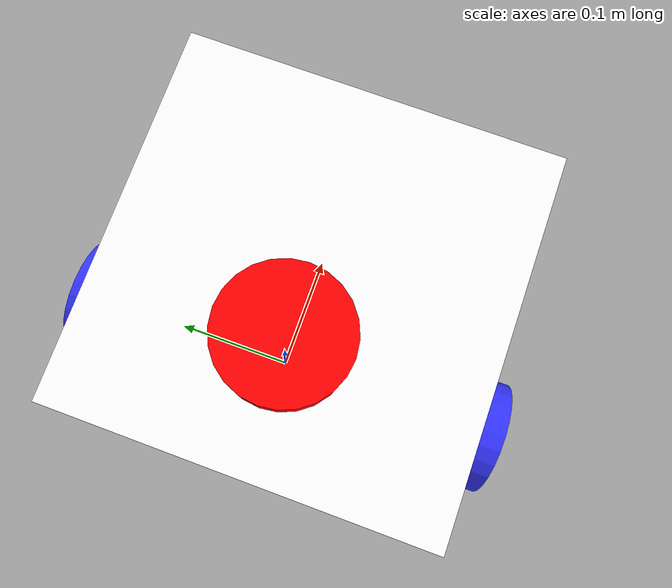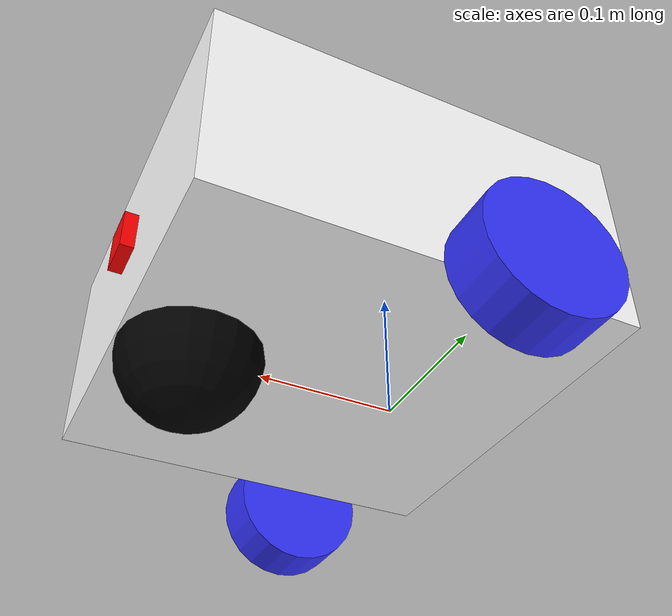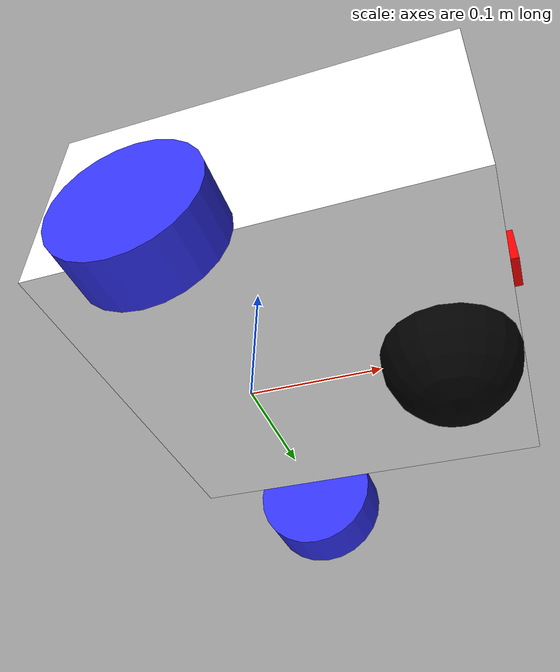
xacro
<?xml version="1.0"?>
<robot xmlns:xacro="http://www.ros.org/wiki/xacro"  name="robot">

    <xacro:arg name = "use_ros2_control" default = "true"/>
    <xacro:include filename="robot_core.xacro" />

    <xacro:if value="$(arg use_ros2_control)">
        <xacro:include filename="ros2_control.xacro" />
    </xacro:if>
    <xacro:unless value="$(arg use_ros2_control)">
        <xacro:include filename="gazebo_control.xacro" />
    </xacro:unless>
    <xacro:include filename="lidar.xacro" />
    <xacro:include filename="camera.xacro" />
</robot>

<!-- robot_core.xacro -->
<robot xmlns:xacro="http://www.ros.org/wiki/xacro">

  <xacro:include filename = "inertial_macros.xacro"/>

<material name="white">
<color rgba="1 1 1 1"/>
</material>

<material name="orange">
<color rgba="1 0.3 0.1 1"/>
</material>

<material name="blue">
<color rgba="0.2 0.2 1 1"/>
</material>

<material name="black">
<color rgba="0 0 0 1"/>
</material>

<material name="red">
<color rgba="1 0 0 1"/>
</material>

<link name="base_link">
</link>

<!--Base footprint-->
<joint name="base_footprint_joint" type="fixed">
    <parent link="base_link"/>
    <child link="base_footprint"/>
    <origin xyz="0 0 0" rpy = "0 0 0"/>

</joint>

<link name="base_footprint">
</link>

<!-- Chassis Link-->
<joint name="chassis_joint" type="fixed">
    <parent link="base_link"/>
    <child link="chassis"/>
    <origin xyz="-0.1 0 0"/>

</joint>

<link name="chassis">
    <visual>
        <origin xyz="0.15 0 0.08"/>
        <geometry>
            <box size="0.3 0.3 0.15"/>
        </geometry>
        <material name="white"/>
    </visual>
    <collision>
        <origin xyz="0.15 0 0.08"/>
        <geometry>
            <box size="0.3 0.3 0.15"/>
        </geometry>
    </collision>
<xacro:inertial_box mass = "5" x ="0" y = "0" z = "0.02">
    <origin xyz = "0.15 0 0.08" rpy = "0 0 0"/>
</xacro:inertial_box>
</link>
<gazebo refernce ="chassis">
    <material>Gazebo/white</material >
</gazebo>
<!-- Right Wheel Link-->

<joint name = "right_wheel_joint" type="continuous">
        <parent link="base_link"/>
        <child link="right_wheel"/>
        <origin xyz="0 -0.175 0" rpy="${pi/2} 0 0"/>
        <axis xyz="0 0 -1"/>
        <limits effort = "0.08" velocity="10.0"/>
</joint>

<link name="right_wheel">
     <visual>
        <geometry>
            <cylinder radius="0.05" length = "0.04"/>
        </geometry>
        <material name="blue"/>
    </visual>
     <collision>
        <geometry>
            <sphere radius="0.05"/>
        </geometry>
    </collision>
    <xacro:inertial_cylinder mass = "0.1" length ="0.04" radius = "0.05">
    <origin xyz = "0 0 0" rpy = "0 0 0"/>
</xacro:inertial_cylinder>
</link>
<gazebo refernce ="right_wheel">
    <material>Gazebo/blue</material>
</gazebo>

<!-- Left Wheel Link-->

<joint name = "left_wheel_joint" type="continuous">
        <parent link="base_link"/>
        <child link="left_wheel"/>
        <origin xyz="0 0.175 0" rpy="-${pi/2} 0 0"/>
        <axis xyz="0 0 1"/>
        <limits effort = "0.08" velocity="10.0"/>
</joint>

<link name = "left_wheel">
     <visual>
        <geometry>
            <cylinder radius="0.05" length = "0.04"/>
        </geometry>
        <material name="blue"/>
    </visual>

    <collision>
        <geometry>
            <sphere radius="0.05"/>
        </geometry>
    </collision>
<xacro:inertial_cylinder mass = "0.1" length ="0.04" radius = "0.05">
    <origin xyz = "0 0 0" rpy = "0 0 0"/>
</xacro:inertial_cylinder>
</link>
<gazebo refernce ="left_wheel">
    <material>Gazebo/blue</material >
</gazebo>
<!-- Caster Wheel Link-->

<joint name = "caster_wheel_joint" type="fixed">
        <parent link="chassis"/>
        <child link="caster_wheel"/>
        <origin xyz="0.25 0 0"/>
</joint>

<link name = "caster_wheel">
     <visual>
        <geometry>
            <sphere radius="0.05"/>
        </geometry>
        <material name="black"/>
    </visual>
    <collision>
        <geometry>
            <sphere radius="0.05"/>
        </geometry>
    </collision>
</link>
    <xacro:inertial_sphere mass = "0.1" radius = "0.05">
    <origin xyz = "0 0 0" rpy = "0 0 0"/>
</xacro:inertial_sphere>
<gazebo refernce ="caster_wheel">
    <material>Gazebo/black</material >
    <mu1 value = "0.001" />
    <mu2 value = "0.001" />
</gazebo>
</robot>

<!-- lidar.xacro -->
<robot xmlns:xacro="http://www.ros.org/wiki/xacro" >

  <joint name = "laser_joint" type = "fixed">
    <parent link = "chassis"/>
    <child link = "laser_frame"/>
    <origin xyz = "0.1 0 0.175" rpy = "0 0 0"/>
  </joint>

<link name = "laser_frame">

 <visual>
        <geometry>
            <cylinder radius="0.05" length = "0.04"/>
        </geometry>
        <material name="red"/>
    </visual>

    <collision>
        <geometry>
            <cylinder radius="0.05" length = "0.04"/>
        </geometry>
    </collision>
<xacro:inertial_cylinder mass = "0.1" length ="0.04" radius = "0.05">
    <origin xyz = "0 0 0" rpy = "0 0 0"/>
</xacro:inertial_cylinder>
</link>

<gazebo reference ="laser_frame">
    <material>Gazebo/red</material >
    <sensor name = "laser" type = "gpu_lidar">
    <pose>0 0 0 0 0 0</pose>
    <visualize>true</visualize>
    <update_rate>2</update_rate>
    <lidar>
        <scan>
            <horizontal>
                <samples>720</samples>
                <resolution>1</resolution>
                <min_angle>-3.14</min_angle>
                <max_angle>3.14</max_angle>
            </horizontal>
        </scan>
        <range>
            <min>0.3</min>
            <max>12</max>
            <resolution>0.005</resolution>
        </range>
        <noise>
            <type>gaussian</type>
            <mean>0.0</mean>
            <stddev>0.001</stddev>
        </noise>
    </lidar>
    <topic>scan</topic>
    <gz_frame_id>laser_frame</gz_frame_id>

</sensor>
</gazebo>

</robot>

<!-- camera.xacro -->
<robot xmlns:xacro="http://www.ros.org/wiki/xacro" >

  <joint name = "camera_joint" type = "fixed">
    <parent link = "chassis"/>
    <child link = "camera_link"/>
    <origin xyz = "0.305 0 0.08" rpy = "0 0 0"/>
  </joint>

<link name = "camera_link">

 <visual>
        <geometry>
            <box size = "0.010 0.03 0.03"/>
        </geometry>
        <material name="red"/>
</visual>
</link>

  <joint name = "camera_optical_joint" type = "fixed">
    <parent link = "camera_link"/>
    <child link = "camera_optical_link"/>
    <origin xyz = "0 0 0" rpy = "${-pi/2} 0 ${-pi/2}"/>
  </joint>

  <link name= "camera_optical_link">
  </link>

<gazebo reference ="camera_link">
    <material>Gazebo/red</material >
    <sensor name = "camera" type = "camera">
    <pose>0 0 0 0 0 0</pose>
    <visualize>true</visualize>
    <update_rate>2</update_rate>
    <camera>
      <camera_info_topic>camera/camera_info</camera_info_topic>
      <horizontal_fov>1.089</horizontal_fov>
      <image>
        <format>R8G8B8</format>
        <width>640</width>
        <height>480</height>
      </image>
      <clip>
        <near>0.05</near>
        <far>8.0</far>
      </clip>
    </camera>
    <topic>camera/image_raw</topic>
    <gz_frame_id>camera_optical_link</gz_frame_id>

    </sensor>
</gazebo>

</robot>
